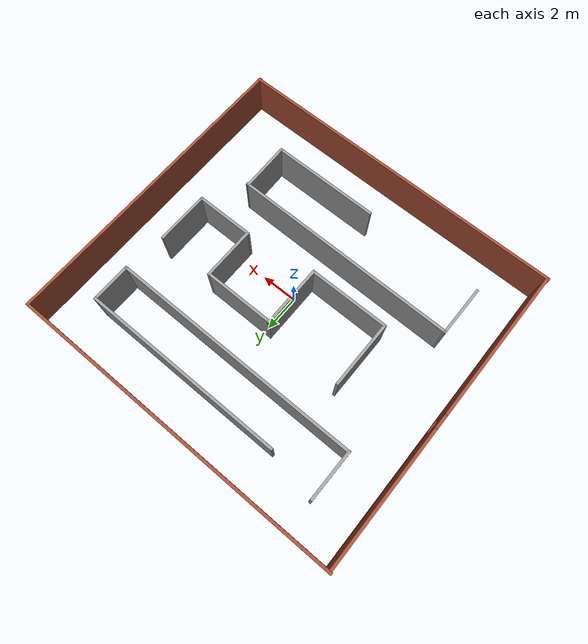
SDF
<?xml version='1.0'?>
<sdf version='1.6'>
  <model name='Untitled'>
    <pose frame=''>-0.170984 0.470204 0 0 -0 0</pose>
    <link name='Wall_10'>
      <collision name='Wall_10_Collision'>
        <geometry>
          <box>
            <size>18.6975 0.15 2.5</size>
          </box>
        </geometry>
        <pose frame=''>0 0 1.25 0 -0 0</pose>
      </collision>
      <visual name='Wall_10_Visual'>
        <pose frame=''>0 0 1.25 0 -0 0</pose>
        <geometry>
          <box>
            <size>18.6975 0.15 2.5</size>
          </box>
        </geometry>
        <material>
          <script>
            <uri>file://media/materials/scripts/gazebo.material</uri>
            <name>Gazebo/Bricks</name>
          </script>
          <ambient>1 1 1 1</ambient>
        </material>
      </visual>
      <pose frame=''>0.026751 -8.53883 0 0 -0 3.14159</pose>
    </link>
    <link name='Wall_12'>
      <collision name='Wall_12_Collision'>
        <geometry>
          <box>
            <size>2.8283 0.15 2.5</size>
          </box>
        </geometry>
        <pose frame=''>0 0 1.25 0 -0 0</pose>
      </collision>
      <visual name='Wall_12_Visual'>
        <pose frame=''>0 0 1.25 0 -0 0</pose>
        <geometry>
          <box>
            <size>2.8283 0.15 2.5</size>
          </box>
        </geometry>
        <material>
          <script>
            <uri>file://media/materials/scripts/gazebo.material</uri>
            <name>Gazebo/Grey</name>
          </script>
          <ambient>1 1 1 1</ambient>
        </material>
      </visual>
      <pose frame=''>-6.92401 -4.4565 0 0 -0 1.5708</pose>
    </link>
    <link name='Wall_13'>
      <collision name='Wall_13_Collision'>
        <geometry>
          <box>
            <size>12.5128 0.15 2.5</size>
          </box>
        </geometry>
        <pose frame=''>0 0 1.25 0 -0 0</pose>
      </collision>
      <visual name='Wall_13_Visual'>
        <pose frame=''>0 0 1.25 0 -0 0</pose>
        <geometry>
          <box>
            <size>12.5128 0.15 2.5</size>
          </box>
        </geometry>
        <material>
          <script>
            <uri>file://media/materials/scripts/gazebo.material</uri>
            <name>Gazebo/Grey</name>
          </script>
          <ambient>1 1 1 1</ambient>
        </material>
      </visual>
      <pose frame=''>-0.68916 -3.14437 0 0 0 -0.004328</pose>
    </link>
    <link name='Wall_14'>
      <collision name='Wall_14_Collision'>
        <geometry>
          <box>
            <size>2.82777 0.15 2.5</size>
          </box>
        </geometry>
        <pose frame=''>0 0 1.25 0 -0 0</pose>
      </collision>
      <visual name='Wall_14_Visual'>
        <pose frame=''>0 0 1.25 0 -0 0</pose>
        <geometry>
          <box>
            <size>2.82777 0.15 2.5</size>
          </box>
        </geometry>
        <material>
          <script>
            <uri>file://media/materials/scripts/gazebo.material</uri>
            <name>Gazebo/Grey</name>
          </script>
          <ambient>1 1 1 1</ambient>
        </material>
      </visual>
      <pose frame=''>5.46543 -4.51001 0 0 0 -1.55082</pose>
    </link>
    <link name='Wall_15'>
      <collision name='Wall_15_Collision'>
        <geometry>
          <box>
            <size>6 0.15 2.5</size>
          </box>
        </geometry>
        <pose frame=''>0 0 1.25 0 -0 0</pose>
      </collision>
      <visual name='Wall_15_Visual'>
        <pose frame=''>0 0 1.25 0 -0 0</pose>
        <geometry>
          <box>
            <size>6 0.15 2.5</size>
          </box>
        </geometry>
        <material>
          <script>
            <uri>file://media/materials/scripts/gazebo.material</uri>
            <name>Gazebo/Grey</name>
          </script>
          <ambient>1 1 1 1</ambient>
        </material>
      </visual>
      <pose frame=''>2.56718 -5.84889 0 0 -0 3.14159</pose>
    </link>
    <link name='Wall_17'>
      <collision name='Wall_17_Collision'>
        <geometry>
          <box>
            <size>2.75 0.15 2.5</size>
          </box>
        </geometry>
        <pose frame=''>0 0 1.25 0 -0 0</pose>
      </collision>
      <visual name='Wall_17_Visual'>
        <pose frame=''>0 0 1.25 0 -0 0</pose>
        <geometry>
          <box>
            <size>2.75 0.15 2.5</size>
          </box>
        </geometry>
        <material>
          <script>
            <uri>file://media/materials/scripts/gazebo.material</uri>
            <name>Gazebo/Grey</name>
          </script>
          <ambient>1 1 1 1</ambient>
        </material>
      </visual>
      <pose frame=''>-6.84675 5.47981 0 0 0 -1.5708</pose>
    </link>
    <link name='Wall_18'>
      <collision name='Wall_18_Collision'>
        <geometry>
          <box>
            <size>14 0.15 2.5</size>
          </box>
        </geometry>
        <pose frame=''>0 0 1.25 0 -0 0</pose>
      </collision>
      <visual name='Wall_18_Visual'>
        <pose frame=''>0 0 1.25 0 -0 0</pose>
        <geometry>
          <box>
            <size>14 0.15 2.5</size>
          </box>
        </geometry>
        <material>
          <script>
            <uri>file://media/materials/scripts/gazebo.material</uri>
            <name>Gazebo/Grey</name>
          </script>
          <ambient>1 1 1 1</ambient>
        </material>
      </visual>
      <pose frame=''>0.078248 4.17981 0 0 -0 0</pose>
    </link>
    <link name='Wall_19'>
      <collision name='Wall_19_Collision'>
        <geometry>
          <box>
            <size>2.25 0.15 2.5</size>
          </box>
        </geometry>
        <pose frame=''>0 0 1.25 0 -0 0</pose>
      </collision>
      <visual name='Wall_19_Visual'>
        <pose frame=''>0 0 1.25 0 -0 0</pose>
        <geometry>
          <box>
            <size>2.25 0.15 2.5</size>
          </box>
        </geometry>
        <material>
          <script>
            <uri>file://media/materials/scripts/gazebo.material</uri>
            <name>Gazebo/Grey</name>
          </script>
          <ambient>1 1 1 1</ambient>
        </material>
      </visual>
      <pose frame=''>7.00325 5.22981 0 0 -0 1.5708</pose>
    </link>
    <link name='Wall_20'>
      <collision name='Wall_20_Collision'>
        <geometry>
          <box>
            <size>11.25 0.15 2.5</size>
          </box>
        </geometry>
        <pose frame=''>0 0 1.25 0 -0 0</pose>
      </collision>
      <visual name='Wall_20_Visual'>
        <pose frame=''>0 0 1.25 0 -0 0</pose>
        <geometry>
          <box>
            <size>11.25 0.15 2.5</size>
          </box>
        </geometry>
        <material>
          <script>
            <uri>file://media/materials/scripts/gazebo.material</uri>
            <name>Gazebo/Grey</name>
          </script>
          <ambient>1 1 1 1</ambient>
        </material>
      </visual>
      <pose frame=''>1.45325 6.27981 0 0 -0 3.14159</pose>
    </link>
    <link name='Wall_22'>
      <collision name='Wall_22_Collision'>
        <geometry>
          <box>
            <size>3.75 0.15 2.5</size>
          </box>
        </geometry>
        <pose frame=''>0 0 1.25 0 -0 0</pose>
      </collision>
      <visual name='Wall_22_Visual'>
        <pose frame=''>0 0 1.25 0 -0 0</pose>
        <geometry>
          <box>
            <size>3.75 0.15 2.5</size>
          </box>
        </geometry>
        <material>
          <script>
            <uri>file://media/materials/scripts/gazebo.material</uri>
            <name>Gazebo/Grey</name>
          </script>
          <ambient>1 1 1 1</ambient>
        </material>
      </visual>
      <pose frame=''>-4.54615 0.271591 0 0 0 -1.5708</pose>
    </link>
    <link name='Wall_23'>
      <collision name='Wall_23_Collision'>
        <geometry>
          <box>
            <size>4.5 0.15 2.5</size>
          </box>
        </geometry>
        <pose frame=''>0 0 1.25 0 -0 0</pose>
      </collision>
      <visual name='Wall_23_Visual'>
        <pose frame=''>0 0 1.25 0 -0 0</pose>
        <geometry>
          <box>
            <size>4.5 0.15 2.5</size>
          </box>
        </geometry>
        <material>
          <script>
            <uri>file://media/materials/scripts/gazebo.material</uri>
            <name>Gazebo/Grey</name>
          </script>
          <ambient>1 1 1 1</ambient>
        </material>
      </visual>
      <pose frame=''>-2.37114 -1.52841 0 0 -0 0</pose>
    </link>
    <link name='Wall_24'>
      <collision name='Wall_24_Collision'>
        <geometry>
          <box>
            <size>3.5 0.15 2.5</size>
          </box>
        </geometry>
        <pose frame=''>0 0 1.25 0 -0 0</pose>
      </collision>
      <visual name='Wall_24_Visual'>
        <pose frame=''>0 0 1.25 0 -0 0</pose>
        <geometry>
          <box>
            <size>3.5 0.15 2.5</size>
          </box>
        </geometry>
        <material>
          <script>
            <uri>file://media/materials/scripts/gazebo.material</uri>
            <name>Gazebo/Grey</name>
          </script>
          <ambient>1 1 1 1</ambient>
        </material>
      </visual>
      <pose frame=''>-0.196145 0.146591 0 0 -0 1.5708</pose>
    </link>
    <link name='Wall_25'>
      <collision name='Wall_25_Collision'>
        <geometry>
          <box>
            <size>4 0.15 2.5</size>
          </box>
        </geometry>
        <pose frame=''>0 0 1.25 0 -0 0</pose>
      </collision>
      <visual name='Wall_25_Visual'>
        <pose frame=''>0 0 1.25 0 -0 0</pose>
        <geometry>
          <box>
            <size>4 0.15 2.5</size>
          </box>
        </geometry>
        <material>
          <script>
            <uri>file://media/materials/scripts/gazebo.material</uri>
            <name>Gazebo/Grey</name>
          </script>
          <ambient>1 1 1 1</ambient>
        </material>
      </visual>
      <pose frame=''>1.72886 1.82159 0 0 -0 0</pose>
    </link>
    <link name='Wall_26'>
      <collision name='Wall_26_Collision'>
        <geometry>
          <box>
            <size>3 0.15 2.5</size>
          </box>
        </geometry>
        <pose frame=''>0 0 1.25 0 -0 0</pose>
      </collision>
      <visual name='Wall_26_Visual'>
        <pose frame=''>0 0 1.25 0 -0 0</pose>
        <geometry>
          <box>
            <size>3 0.15 2.5</size>
          </box>
        </geometry>
        <material>
          <script>
            <uri>file://media/materials/scripts/gazebo.material</uri>
            <name>Gazebo/Grey</name>
          </script>
          <ambient>1 1 1 1</ambient>
        </material>
      </visual>
      <pose frame=''>3.65386 0.396591 0 0 0 -1.5708</pose>
    </link>
    <link name='Wall_27'>
      <collision name='Wall_27_Collision'>
        <geometry>
          <box>
            <size>3.25 0.15 2.5</size>
          </box>
        </geometry>
        <pose frame=''>0 0 1.25 0 -0 0</pose>
      </collision>
      <visual name='Wall_27_Visual'>
        <pose frame=''>0 0 1.25 0 -0 0</pose>
        <geometry>
          <box>
            <size>3.25 0.15 2.5</size>
          </box>
        </geometry>
        <material>
          <script>
            <uri>file://media/materials/scripts/gazebo.material</uri>
            <name>Gazebo/Grey</name>
          </script>
          <ambient>1 1 1 1</ambient>
        </material>
      </visual>
      <pose frame=''>5.20385 -1.02841 0 0 -0 0</pose>
    </link>
    <link name='Wall_28'>
      <collision name='Wall_28_Collision'>
        <geometry>
          <box>
            <size>3 0.15 2.5</size>
          </box>
        </geometry>
        <pose frame=''>0 0 1.25 0 -0 0</pose>
      </collision>
      <visual name='Wall_28_Visual'>
        <pose frame=''>0 0 1.25 0 -0 0</pose>
        <geometry>
          <box>
            <size>3 0.15 2.5</size>
          </box>
        </geometry>
        <material>
          <script>
            <uri>file://media/materials/scripts/gazebo.material</uri>
            <name>Gazebo/Grey</name>
          </script>
          <ambient>1 1 1 1</ambient>
        </material>
      </visual>
      <pose frame=''>6.75385 0.396591 0 0 -0 1.5708</pose>
    </link>
    <link name='Wall_7'>
      <pose frame=''>-9.22942 0.017512 0 0 -0 1.57285</pose>
      <visual name='Wall_7_Visual_0'>
        <pose frame=''>-4.29121 0 1.25 0 -0 0</pose>
        <geometry>
          <box>
            <size>8.68031 0.15 2.5</size>
          </box>
        </geometry>
        <material>
          <script>
            <uri>file://media/materials/scripts/gazebo.material</uri>
            <name>Gazebo/Bricks</name>
          </script>
          <ambient>1 1 1 1</ambient>
        </material>
      </visual>
      <collision name='Wall_7_Collision_0'>
        <geometry>
          <box>
            <size>8.68031 0.15 2.5</size>
          </box>
        </geometry>
        <pose frame=''>-4.29121 0 1.25 0 -0 0</pose>
      </collision>
      <visual name='Wall_7_Visual_1'>
        <pose frame=''>4.34015 0 0.25 0 -0 0</pose>
        <geometry>
          <box>
            <size>8.58242 0.15 0.5</size>
          </box>
        </geometry>
        <material>
          <script>
            <uri>file://media/materials/scripts/gazebo.material</uri>
            <name>Gazebo/Bricks</name>
          </script>
          <ambient>1 1 1 1</ambient>
        </material>
      </visual>
      <collision name='Wall_7_Collision_1'>
        <geometry>
          <box>
            <size>8.58242 0.15 0.5</size>
          </box>
        </geometry>
        <pose frame=''>4.34015 0 0.25 0 -0 0</pose>
      </collision>
      <visual name='Wall_7_Visual_2'>
        <pose frame=''>4.74015 0 1.5 0 -0 0</pose>
        <geometry>
          <box>
            <size>7.78242 0.15 2</size>
          </box>
        </geometry>
        <material>
          <script>
            <uri>file://media/materials/scripts/gazebo.material</uri>
            <name>Gazebo/Bricks</name>
          </script>
          <ambient>1 1 1 1</ambient>
        </material>
      </visual>
      <collision name='Wall_7_Collision_2'>
        <geometry>
          <box>
            <size>7.78242 0.15 2</size>
          </box>
        </geometry>
        <pose frame=''>4.74015 0 1.5 0 -0 0</pose>
      </collision>
      <visual name='Wall_7_Visual_3'>
        <pose frame=''>0.448944 0 1.9 0 -0 0</pose>
        <geometry>
          <box>
            <size>0.8 0.15 1.2</size>
          </box>
        </geometry>
        <material>
          <script>
            <uri>file://media/materials/scripts/gazebo.material</uri>
            <name>Gazebo/Bricks</name>
          </script>
          <ambient>1 1 1 1</ambient>
        </material>
      </visual>
      <collision name='Wall_7_Collision_3'>
        <geometry>
          <box>
            <size>0.8 0.15 1.2</size>
          </box>
        </geometry>
        <pose frame=''>0.448944 0 1.9 0 -0 0</pose>
      </collision>
    </link>
    <link name='Wall_8'>
      <collision name='Wall_8_Collision'>
        <geometry>
          <box>
            <size>18.6975 0.15 2.5</size>
          </box>
        </geometry>
        <pose frame=''>0 0 1.25 0 -0 0</pose>
      </collision>
      <visual name='Wall_8_Visual'>
        <pose frame=''>0 0 1.25 0 -0 0</pose>
        <geometry>
          <box>
            <size>18.6975 0.15 2.5</size>
          </box>
        </geometry>
        <material>
          <script>
            <uri>file://media/materials/scripts/gazebo.material</uri>
            <name>Gazebo/Bricks</name>
          </script>
          <ambient>1 1 1 1</ambient>
        </material>
      </visual>
      <pose frame=''>-0.026751 8.57386 0 0 -0 0</pose>
    </link>
    <link name='Wall_9'>
      <collision name='Wall_9_Collision'>
        <geometry>
          <box>
            <size>17.2979 0.15 2.5</size>
          </box>
        </geometry>
        <pose frame=''>0 0 1.25 0 -0 0</pose>
      </collision>
      <visual name='Wall_9_Visual'>
        <pose frame=''>0 0 1.25 0 -0 0</pose>
        <geometry>
          <box>
            <size>17.2979 0.15 2.5</size>
          </box>
        </geometry>
        <material>
          <script>
            <uri>file://media/materials/scripts/gazebo.material</uri>
            <name>Gazebo/Bricks</name>
          </script>
          <ambient>1 1 1 1</ambient>
        </material>
      </visual>
      <pose frame=''>9.30051 -7.7e-05 0 0 0 -1.5708</pose>
    </link>
    <static>1</static>
  </model>
</sdf>
